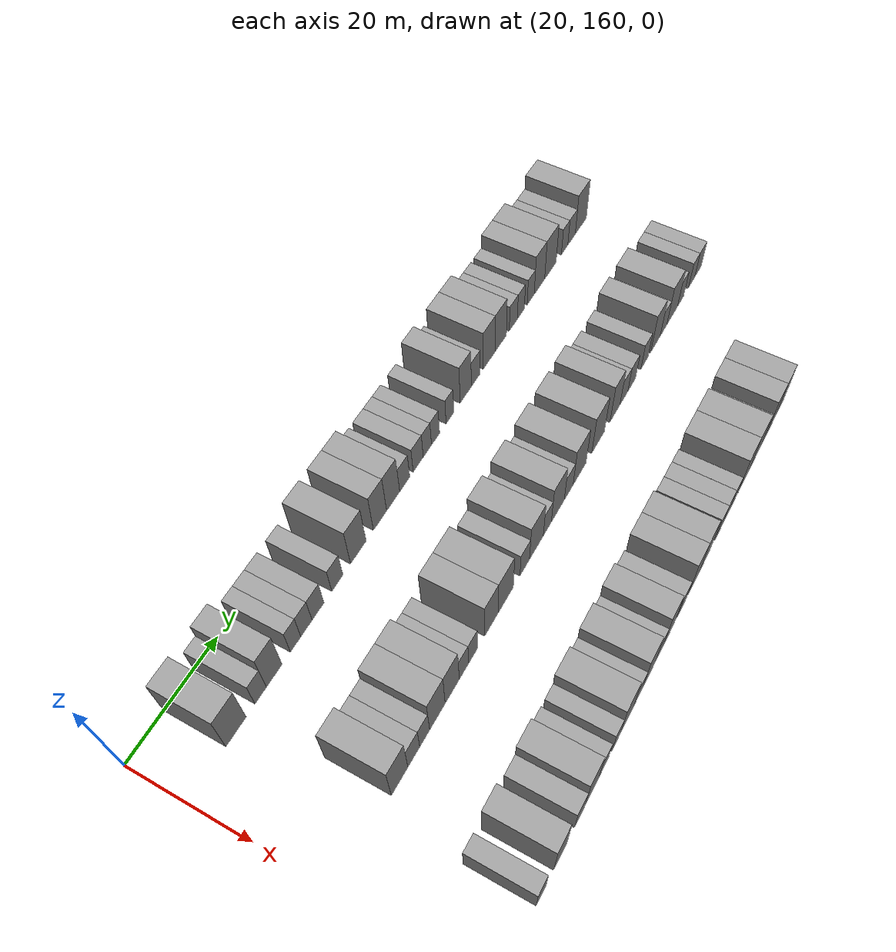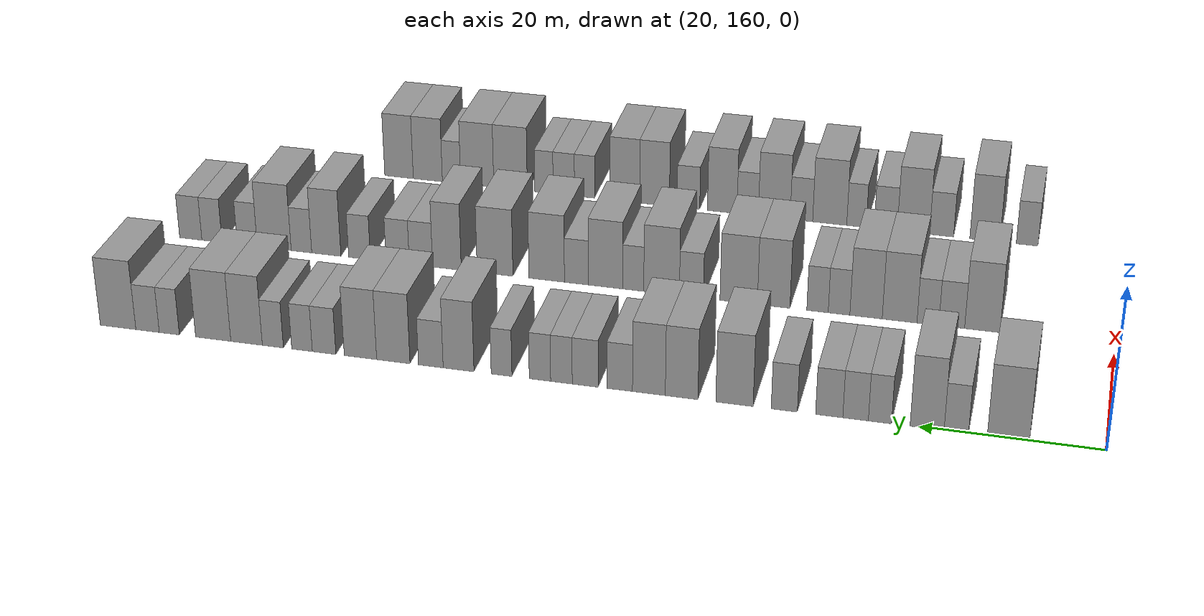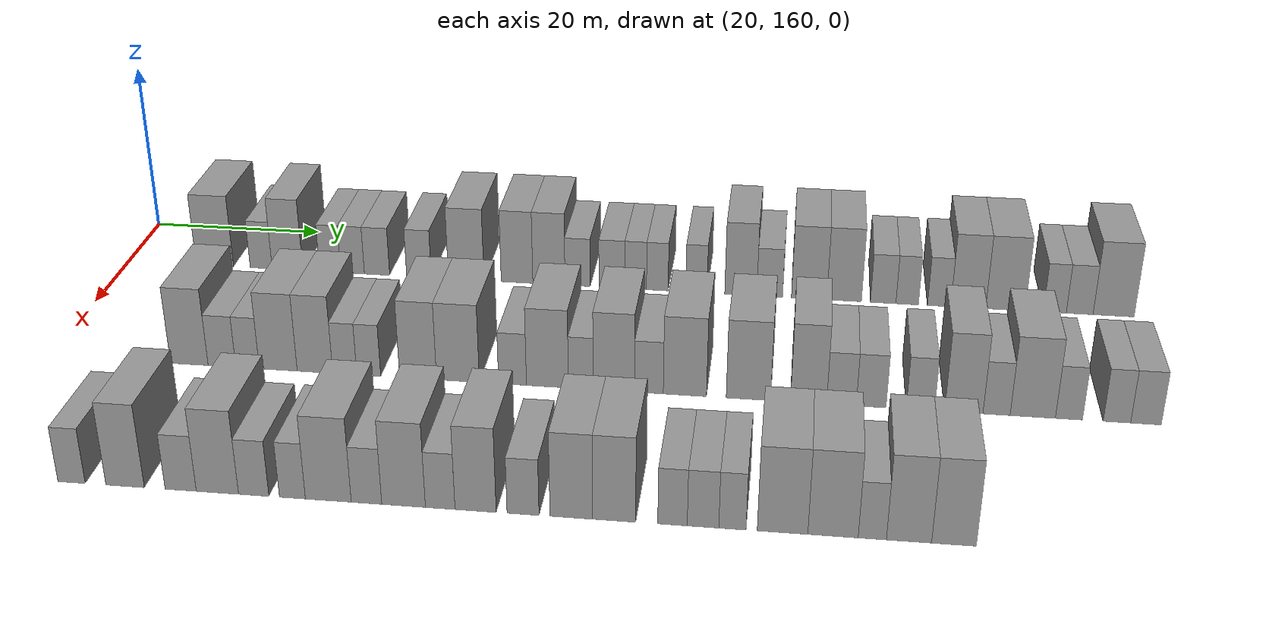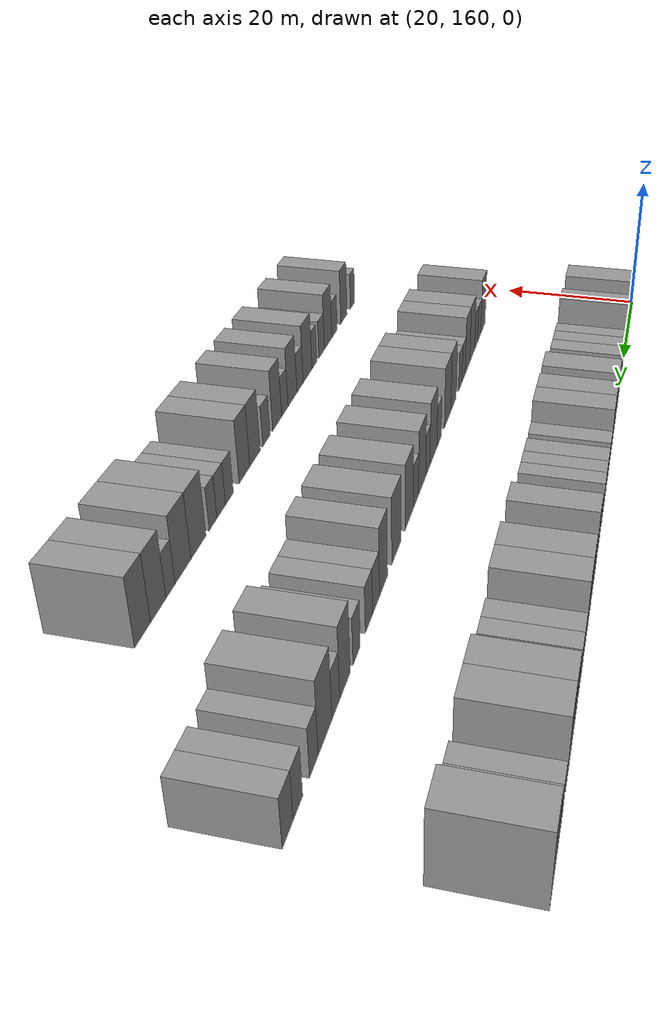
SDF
<sdf version="1.6">
 <world name="default">
  <model name="building_137">
   <static>1</static>
   <pose>25.0000 170.4152 0 0.000000 0.000000 0.000000</pose>
   <link name="link">
    <pose>0 0 4.50 0 0 0</pose>
    <collision name="collision"><geometry><box><size>10.0000 4.4914 9.0000</size></box></geometry></collision>
    <visual name="visual">
     <cast_shadows>0</cast_shadows>
     <geometry><box><size>10.0000 4.4914 9.0000</size></box></geometry>
     <material>
      <script>
       <uri>model://grey_wall/materials/scripts</uri>
       <uri>model://grey_wall/materials/textures</uri>
       <name>vrc/grey_wall</name>
      </script>
     </material>
    </visual>
   </link>
  </model>
  <model name="building_138">
   <static>1</static>
   <pose>25.0000 175.9727 0 0.000000 0.000000 0.000000</pose>
   <link name="link">
    <pose>0 0 3.00 0 0 0</pose>
    <collision name="collision"><geometry><box><size>10.0000 2.6237 6.0000</size></box></geometry></collision>
    <visual name="visual">
     <cast_shadows>0</cast_shadows>
     <geometry><box><size>10.0000 2.6237 6.0000</size></box></geometry>
     <material>
      <script>
       <uri>model://grey_wall/materials/scripts</uri>
       <uri>model://grey_wall/materials/textures</uri>
       <name>vrc/grey_wall</name>
      </script>
     </material>
    </visual>
   </link>
  </model>
  <model name="building_139">
   <static>1</static>
   <pose>25.0000 179.1172 0 0.000000 0.000000 0.000000</pose>
   <link name="link">
    <pose>0 0 4.50 0 0 0</pose>
    <collision name="collision"><geometry><box><size>10.0000 3.6653 9.0000</size></box></geometry></collision>
    <visual name="visual">
     <cast_shadows>0</cast_shadows>
     <geometry><box><size>10.0000 3.6653 9.0000</size></box></geometry>
     <material>
      <script>
       <uri>model://grey_wall/materials/scripts</uri>
       <uri>model://grey_wall/materials/textures</uri>
       <name>vrc/grey_wall</name>
      </script>
     </material>
    </visual>
   </link>
  </model>
  <model name="building_140">
   <static>1</static>
   <pose>25.0000 184.2081 0 0.000000 0.000000 0.000000</pose>
   <link name="link">
    <pose>0 0 3.00 0 0 0</pose>
    <collision name="collision"><geometry><box><size>10.0000 2.5166 6.0000</size></box></geometry></collision>
    <visual name="visual">
     <cast_shadows>0</cast_shadows>
     <geometry><box><size>10.0000 2.5166 6.0000</size></box></geometry>
     <material>
      <script>
       <uri>model://grey_wall/materials/scripts</uri>
       <uri>model://grey_wall/materials/textures</uri>
       <name>vrc/grey_wall</name>
      </script>
     </material>
    </visual>
   </link>
  </model>
  <model name="building_141">
   <static>1</static>
   <pose>25.0000 186.8565 0 0.000000 0.000000 0.000000</pose>
   <link name="link">
    <pose>0 0 3.00 0 0 0</pose>
    <collision name="collision"><geometry><box><size>10.0000 2.7800 6.0000</size></box></geometry></collision>
    <visual name="visual">
     <cast_shadows>0</cast_shadows>
     <geometry><box><size>10.0000 2.7800 6.0000</size></box></geometry>
     <material>
      <script>
       <uri>model://grey_wall/materials/scripts</uri>
       <uri>model://grey_wall/materials/textures</uri>
       <name>vrc/grey_wall</name>
      </script>
     </material>
    </visual>
   </link>
  </model>
  <model name="building_142">
   <static>1</static>
   <pose>25.0000 189.7371 0 0.000000 0.000000 0.000000</pose>
   <link name="link">
    <pose>0 0 3.00 0 0 0</pose>
    <collision name="collision"><geometry><box><size>10.0000 2.9812 6.0000</size></box></geometry></collision>
    <visual name="visual">
     <cast_shadows>0</cast_shadows>
     <geometry><box><size>10.0000 2.9812 6.0000</size></box></geometry>
     <material>
      <script>
       <uri>model://grey_wall/materials/scripts</uri>
       <uri>model://grey_wall/materials/textures</uri>
       <name>vrc/grey_wall</name>
      </script>
     </material>
    </visual>
   </link>
  </model>
  <model name="building_143">
   <static>1</static>
   <pose>25.0000 194.6723 0 0.000000 0.000000 0.000000</pose>
   <link name="link">
    <pose>0 0 3.00 0 0 0</pose>
    <collision name="collision"><geometry><box><size>10.0000 2.8892 6.0000</size></box></geometry></collision>
    <visual name="visual">
     <cast_shadows>0</cast_shadows>
     <geometry><box><size>10.0000 2.8892 6.0000</size></box></geometry>
     <material>
      <script>
       <uri>model://grey_wall/materials/scripts</uri>
       <uri>model://grey_wall/materials/textures</uri>
       <name>vrc/grey_wall</name>
      </script>
     </material>
    </visual>
   </link>
  </model>
  <model name="building_144">
   <static>1</static>
   <pose>25.0000 200.1952 0 0.000000 0.000000 0.000000</pose>
   <link name="link">
    <pose>0 0 4.50 0 0 0</pose>
    <collision name="collision"><geometry><box><size>10.0000 4.1565 9.0000</size></box></geometry></collision>
    <visual name="visual">
     <cast_shadows>0</cast_shadows>
     <geometry><box><size>10.0000 4.1565 9.0000</size></box></geometry>
     <material>
      <script>
       <uri>model://grey_wall/materials/scripts</uri>
       <uri>model://grey_wall/materials/textures</uri>
       <name>vrc/grey_wall</name>
      </script>
     </material>
    </visual>
   </link>
  </model>
  <model name="building_145">
   <static>1</static>
   <pose>25.0000 206.1058 0 0.000000 0.000000 0.000000</pose>
   <link name="link">
    <pose>0 0 4.50 0 0 0</pose>
    <collision name="collision"><geometry><box><size>10.0000 3.6646 9.0000</size></box></geometry></collision>
    <visual name="visual">
     <cast_shadows>0</cast_shadows>
     <geometry><box><size>10.0000 3.6646 9.0000</size></box></geometry>
     <material>
      <script>
       <uri>model://grey_wall/materials/scripts</uri>
       <uri>model://grey_wall/materials/textures</uri>
       <name>vrc/grey_wall</name>
      </script>
     </material>
    </visual>
   </link>
  </model>
  <model name="building_146">
   <static>1</static>
   <pose>25.0000 209.7932 0 0.000000 0.000000 0.000000</pose>
   <link name="link">
    <pose>0 0 4.50 0 0 0</pose>
    <collision name="collision"><geometry><box><size>10.0000 3.7104 9.0000</size></box></geometry></collision>
    <visual name="visual">
     <cast_shadows>0</cast_shadows>
     <geometry><box><size>10.0000 3.7104 9.0000</size></box></geometry>
     <material>
      <script>
       <uri>model://grey_wall/materials/scripts</uri>
       <uri>model://grey_wall/materials/textures</uri>
       <name>vrc/grey_wall</name>
      </script>
     </material>
    </visual>
   </link>
  </model>
  <model name="building_147">
   <static>1</static>
   <pose>25.0000 213.0975 0 0.000000 0.000000 0.000000</pose>
   <link name="link">
    <pose>0 0 3.00 0 0 0</pose>
    <collision name="collision"><geometry><box><size>10.0000 2.8982 6.0000</size></box></geometry></collision>
    <visual name="visual">
     <cast_shadows>0</cast_shadows>
     <geometry><box><size>10.0000 2.8982 6.0000</size></box></geometry>
     <material>
      <script>
       <uri>model://grey_wall/materials/scripts</uri>
       <uri>model://grey_wall/materials/textures</uri>
       <name>vrc/grey_wall</name>
      </script>
     </material>
    </visual>
   </link>
  </model>
  <model name="building_148">
   <static>1</static>
   <pose>25.0000 217.0264 0 0.000000 0.000000 0.000000</pose>
   <link name="link">
    <pose>0 0 3.00 0 0 0</pose>
    <collision name="collision"><geometry><box><size>10.0000 2.9596 6.0000</size></box></geometry></collision>
    <visual name="visual">
     <cast_shadows>0</cast_shadows>
     <geometry><box><size>10.0000 2.9596 6.0000</size></box></geometry>
     <material>
      <script>
       <uri>model://grey_wall/materials/scripts</uri>
       <uri>model://grey_wall/materials/textures</uri>
       <name>vrc/grey_wall</name>
      </script>
     </material>
    </visual>
   </link>
  </model>
  <model name="building_149">
   <static>1</static>
   <pose>25.0000 219.7441 0 0.000000 0.000000 0.000000</pose>
   <link name="link">
    <pose>0 0 3.00 0 0 0</pose>
    <collision name="collision"><geometry><box><size>10.0000 2.4757 6.0000</size></box></geometry></collision>
    <visual name="visual">
     <cast_shadows>0</cast_shadows>
     <geometry><box><size>10.0000 2.4757 6.0000</size></box></geometry>
     <material>
      <script>
       <uri>model://grey_wall/materials/scripts</uri>
       <uri>model://grey_wall/materials/textures</uri>
       <name>vrc/grey_wall</name>
      </script>
     </material>
    </visual>
   </link>
  </model>
  <model name="building_150">
   <static>1</static>
   <pose>25.0000 222.2147 0 0.000000 0.000000 0.000000</pose>
   <link name="link">
    <pose>0 0 3.00 0 0 0</pose>
    <collision name="collision"><geometry><box><size>10.0000 2.4656 6.0000</size></box></geometry></collision>
    <visual name="visual">
     <cast_shadows>0</cast_shadows>
     <geometry><box><size>10.0000 2.4656 6.0000</size></box></geometry>
     <material>
      <script>
       <uri>model://grey_wall/materials/scripts</uri>
       <uri>model://grey_wall/materials/textures</uri>
       <name>vrc/grey_wall</name>
      </script>
     </material>
    </visual>
   </link>
  </model>
  <model name="building_151">
   <static>1</static>
   <pose>25.0000 226.6536 0 0.000000 0.000000 0.000000</pose>
   <link name="link">
    <pose>0 0 3.00 0 0 0</pose>
    <collision name="collision"><geometry><box><size>10.0000 2.4122 6.0000</size></box></geometry></collision>
    <visual name="visual">
     <cast_shadows>0</cast_shadows>
     <geometry><box><size>10.0000 2.4122 6.0000</size></box></geometry>
     <material>
      <script>
       <uri>model://grey_wall/materials/scripts</uri>
       <uri>model://grey_wall/materials/textures</uri>
       <name>vrc/grey_wall</name>
      </script>
     </material>
    </visual>
   </link>
  </model>
  <model name="building_152">
   <static>1</static>
   <pose>25.0000 231.6602 0 0.000000 0.000000 0.000000</pose>
   <link name="link">
    <pose>0 0 4.50 0 0 0</pose>
    <collision name="collision"><geometry><box><size>10.0000 3.6009 9.0000</size></box></geometry></collision>
    <visual name="visual">
     <cast_shadows>0</cast_shadows>
     <geometry><box><size>10.0000 3.6009 9.0000</size></box></geometry>
     <material>
      <script>
       <uri>model://grey_wall/materials/scripts</uri>
       <uri>model://grey_wall/materials/textures</uri>
       <name>vrc/grey_wall</name>
      </script>
     </material>
    </visual>
   </link>
  </model>
  <model name="building_153">
   <static>1</static>
   <pose>25.0000 234.9099 0 0.000000 0.000000 0.000000</pose>
   <link name="link">
    <pose>0 0 3.00 0 0 0</pose>
    <collision name="collision"><geometry><box><size>10.0000 2.8985 6.0000</size></box></geometry></collision>
    <visual name="visual">
     <cast_shadows>0</cast_shadows>
     <geometry><box><size>10.0000 2.8985 6.0000</size></box></geometry>
     <material>
      <script>
       <uri>model://grey_wall/materials/scripts</uri>
       <uri>model://grey_wall/materials/textures</uri>
       <name>vrc/grey_wall</name>
      </script>
     </material>
    </visual>
   </link>
  </model>
  <model name="building_154">
   <static>1</static>
   <pose>25.0000 239.3327 0 0.000000 0.000000 0.000000</pose>
   <link name="link">
    <pose>0 0 4.50 0 0 0</pose>
    <collision name="collision"><geometry><box><size>10.0000 3.9470 9.0000</size></box></geometry></collision>
    <visual name="visual">
     <cast_shadows>0</cast_shadows>
     <geometry><box><size>10.0000 3.9470 9.0000</size></box></geometry>
     <material>
      <script>
       <uri>model://grey_wall/materials/scripts</uri>
       <uri>model://grey_wall/materials/textures</uri>
       <name>vrc/grey_wall</name>
      </script>
     </material>
    </visual>
   </link>
  </model>
  <model name="building_155">
   <static>1</static>
   <pose>25.0000 243.2332 0 0.000000 0.000000 0.000000</pose>
   <link name="link">
    <pose>0 0 4.50 0 0 0</pose>
    <collision name="collision"><geometry><box><size>10.0000 3.8540 9.0000</size></box></geometry></collision>
    <visual name="visual">
     <cast_shadows>0</cast_shadows>
     <geometry><box><size>10.0000 3.8540 9.0000</size></box></geometry>
     <material>
      <script>
       <uri>model://grey_wall/materials/scripts</uri>
       <uri>model://grey_wall/materials/textures</uri>
       <name>vrc/grey_wall</name>
      </script>
     </material>
    </visual>
   </link>
  </model>
  <model name="building_156">
   <static>1</static>
   <pose>25.0000 247.5707 0 0.000000 0.000000 0.000000</pose>
   <link name="link">
    <pose>0 0 3.00 0 0 0</pose>
    <collision name="collision"><geometry><box><size>10.0000 2.8210 6.0000</size></box></geometry></collision>
    <visual name="visual">
     <cast_shadows>0</cast_shadows>
     <geometry><box><size>10.0000 2.8210 6.0000</size></box></geometry>
     <material>
      <script>
       <uri>model://grey_wall/materials/scripts</uri>
       <uri>model://grey_wall/materials/textures</uri>
       <name>vrc/grey_wall</name>
      </script>
     </material>
    </visual>
   </link>
  </model>
  <model name="building_157">
   <static>1</static>
   <pose>25.0000 250.2225 0 0.000000 0.000000 0.000000</pose>
   <link name="link">
    <pose>0 0 3.00 0 0 0</pose>
    <collision name="collision"><geometry><box><size>10.0000 2.4826 6.0000</size></box></geometry></collision>
    <visual name="visual">
     <cast_shadows>0</cast_shadows>
     <geometry><box><size>10.0000 2.4826 6.0000</size></box></geometry>
     <material>
      <script>
       <uri>model://grey_wall/materials/scripts</uri>
       <uri>model://grey_wall/materials/textures</uri>
       <name>vrc/grey_wall</name>
      </script>
     </material>
    </visual>
   </link>
  </model>
  <model name="building_158">
   <static>1</static>
   <pose>25.0000 253.7371 0 0.000000 0.000000 0.000000</pose>
   <link name="link">
    <pose>0 0 3.00 0 0 0</pose>
    <collision name="collision"><geometry><box><size>10.0000 2.5468 6.0000</size></box></geometry></collision>
    <visual name="visual">
     <cast_shadows>0</cast_shadows>
     <geometry><box><size>10.0000 2.5468 6.0000</size></box></geometry>
     <material>
      <script>
       <uri>model://grey_wall/materials/scripts</uri>
       <uri>model://grey_wall/materials/textures</uri>
       <name>vrc/grey_wall</name>
      </script>
     </material>
    </visual>
   </link>
  </model>
  <model name="building_159">
   <static>1</static>
   <pose>25.0000 256.9259 0 0.000000 0.000000 0.000000</pose>
   <link name="link">
    <pose>0 0 4.50 0 0 0</pose>
    <collision name="collision"><geometry><box><size>10.0000 3.8307 9.0000</size></box></geometry></collision>
    <visual name="visual">
     <cast_shadows>0</cast_shadows>
     <geometry><box><size>10.0000 3.8307 9.0000</size></box></geometry>
     <material>
      <script>
       <uri>model://grey_wall/materials/scripts</uri>
       <uri>model://grey_wall/materials/textures</uri>
       <name>vrc/grey_wall</name>
      </script>
     </material>
    </visual>
   </link>
  </model>
  <model name="building_160">
   <static>1</static>
   <pose>25.0000 260.9900 0 0.000000 0.000000 0.000000</pose>
   <link name="link">
    <pose>0 0 4.50 0 0 0</pose>
    <collision name="collision"><geometry><box><size>10.0000 4.2975 9.0000</size></box></geometry></collision>
    <visual name="visual">
     <cast_shadows>0</cast_shadows>
     <geometry><box><size>10.0000 4.2975 9.0000</size></box></geometry>
     <material>
      <script>
       <uri>model://grey_wall/materials/scripts</uri>
       <uri>model://grey_wall/materials/textures</uri>
       <name>vrc/grey_wall</name>
      </script>
     </material>
    </visual>
   </link>
  </model>
  <model name="building_161">
   <static>1</static>
   <pose>25.0000 266.3770 0 0.000000 0.000000 0.000000</pose>
   <link name="link">
    <pose>0 0 3.00 0 0 0</pose>
    <collision name="collision"><geometry><box><size>10.0000 2.4764 6.0000</size></box></geometry></collision>
    <visual name="visual">
     <cast_shadows>0</cast_shadows>
     <geometry><box><size>10.0000 2.4764 6.0000</size></box></geometry>
     <material>
      <script>
       <uri>model://grey_wall/materials/scripts</uri>
       <uri>model://grey_wall/materials/textures</uri>
       <name>vrc/grey_wall</name>
      </script>
     </material>
    </visual>
   </link>
  </model>
  <model name="building_162">
   <static>1</static>
   <pose>25.0000 269.0627 0 0.000000 0.000000 0.000000</pose>
   <link name="link">
    <pose>0 0 3.00 0 0 0</pose>
    <collision name="collision"><geometry><box><size>10.0000 2.8949 6.0000</size></box></geometry></collision>
    <visual name="visual">
     <cast_shadows>0</cast_shadows>
     <geometry><box><size>10.0000 2.8949 6.0000</size></box></geometry>
     <material>
      <script>
       <uri>model://grey_wall/materials/scripts</uri>
       <uri>model://grey_wall/materials/textures</uri>
       <name>vrc/grey_wall</name>
      </script>
     </material>
    </visual>
   </link>
  </model>
  <model name="building_163">
   <static>1</static>
   <pose>25.0000 272.7180 0 0.000000 0.000000 0.000000</pose>
   <link name="link">
    <pose>0 0 4.50 0 0 0</pose>
    <collision name="collision"><geometry><box><size>10.0000 4.4158 9.0000</size></box></geometry></collision>
    <visual name="visual">
     <cast_shadows>0</cast_shadows>
     <geometry><box><size>10.0000 4.4158 9.0000</size></box></geometry>
     <material>
      <script>
       <uri>model://grey_wall/materials/scripts</uri>
       <uri>model://grey_wall/materials/textures</uri>
       <name>vrc/grey_wall</name>
      </script>
     </material>
    </visual>
   </link>
  </model>
  <model name="building_336">
   <static>1</static>
   <pose>47.0000 175.1035 0 0.000000 0.000000 0.000000</pose>
   <link name="link">
    <pose>0 0 4.50 0 0 0</pose>
    <collision name="collision"><geometry><box><size>10.0000 4.0680 9.0000</size></box></geometry></collision>
    <visual name="visual">
     <cast_shadows>0</cast_shadows>
     <geometry><box><size>10.0000 4.0680 9.0000</size></box></geometry>
     <material>
      <script>
       <uri>model://grey_wall/materials/scripts</uri>
       <uri>model://grey_wall/materials/textures</uri>
       <name>vrc/grey_wall</name>
      </script>
     </material>
    </visual>
   </link>
  </model>
  <model name="building_337">
   <static>1</static>
   <pose>47.0000 178.6288 0 0.000000 0.000000 0.000000</pose>
   <link name="link">
    <pose>0 0 3.00 0 0 0</pose>
    <collision name="collision"><geometry><box><size>10.0000 2.9825 6.0000</size></box></geometry></collision>
    <visual name="visual">
     <cast_shadows>0</cast_shadows>
     <geometry><box><size>10.0000 2.9825 6.0000</size></box></geometry>
     <material>
      <script>
       <uri>model://grey_wall/materials/scripts</uri>
       <uri>model://grey_wall/materials/textures</uri>
       <name>vrc/grey_wall</name>
      </script>
     </material>
    </visual>
   </link>
  </model>
  <model name="building_338">
   <static>1</static>
   <pose>47.0000 181.3850 0 0.000000 0.000000 0.000000</pose>
   <link name="link">
    <pose>0 0 3.00 0 0 0</pose>
    <collision name="collision"><geometry><box><size>10.0000 2.5298 6.0000</size></box></geometry></collision>
    <visual name="visual">
     <cast_shadows>0</cast_shadows>
     <geometry><box><size>10.0000 2.5298 6.0000</size></box></geometry>
     <material>
      <script>
       <uri>model://grey_wall/materials/scripts</uri>
       <uri>model://grey_wall/materials/textures</uri>
       <name>vrc/grey_wall</name>
      </script>
     </material>
    </visual>
   </link>
  </model>
  <model name="building_339">
   <static>1</static>
   <pose>47.0000 184.6769 0 0.000000 0.000000 0.000000</pose>
   <link name="link">
    <pose>0 0 4.50 0 0 0</pose>
    <collision name="collision"><geometry><box><size>10.0000 4.0539 9.0000</size></box></geometry></collision>
    <visual name="visual">
     <cast_shadows>0</cast_shadows>
     <geometry><box><size>10.0000 4.0539 9.0000</size></box></geometry>
     <material>
      <script>
       <uri>model://grey_wall/materials/scripts</uri>
       <uri>model://grey_wall/materials/textures</uri>
       <name>vrc/grey_wall</name>
      </script>
     </material>
    </visual>
   </link>
  </model>
  <model name="building_340">
   <static>1</static>
   <pose>47.0000 188.5991 0 0.000000 0.000000 0.000000</pose>
   <link name="link">
    <pose>0 0 4.50 0 0 0</pose>
    <collision name="collision"><geometry><box><size>10.0000 3.7904 9.0000</size></box></geometry></collision>
    <visual name="visual">
     <cast_shadows>0</cast_shadows>
     <geometry><box><size>10.0000 3.7904 9.0000</size></box></geometry>
     <material>
      <script>
       <uri>model://grey_wall/materials/scripts</uri>
       <uri>model://grey_wall/materials/textures</uri>
       <name>vrc/grey_wall</name>
      </script>
     </material>
    </visual>
   </link>
  </model>
  <model name="building_341">
   <static>1</static>
   <pose>47.0000 191.7687 0 0.000000 0.000000 0.000000</pose>
   <link name="link">
    <pose>0 0 3.00 0 0 0</pose>
    <collision name="collision"><geometry><box><size>10.0000 2.5490 6.0000</size></box></geometry></collision>
    <visual name="visual">
     <cast_shadows>0</cast_shadows>
     <geometry><box><size>10.0000 2.5490 6.0000</size></box></geometry>
     <material>
      <script>
       <uri>model://grey_wall/materials/scripts</uri>
       <uri>model://grey_wall/materials/textures</uri>
       <name>vrc/grey_wall</name>
      </script>
     </material>
    </visual>
   </link>
  </model>
  <model name="building_342">
   <static>1</static>
   <pose>47.0000 194.3088 0 0.000000 0.000000 0.000000</pose>
   <link name="link">
    <pose>0 0 3.00 0 0 0</pose>
    <collision name="collision"><geometry><box><size>10.0000 2.5311 6.0000</size></box></geometry></collision>
    <visual name="visual">
     <cast_shadows>0</cast_shadows>
     <geometry><box><size>10.0000 2.5311 6.0000</size></box></geometry>
     <material>
      <script>
       <uri>model://grey_wall/materials/scripts</uri>
       <uri>model://grey_wall/materials/textures</uri>
       <name>vrc/grey_wall</name>
      </script>
     </material>
    </visual>
   </link>
  </model>
  <model name="building_343">
   <static>1</static>
   <pose>47.0000 199.5138 0 0.000000 0.000000 0.000000</pose>
   <link name="link">
    <pose>0 0 4.50 0 0 0</pose>
    <collision name="collision"><geometry><box><size>10.0000 3.8790 9.0000</size></box></geometry></collision>
    <visual name="visual">
     <cast_shadows>0</cast_shadows>
     <geometry><box><size>10.0000 3.8790 9.0000</size></box></geometry>
     <material>
      <script>
       <uri>model://grey_wall/materials/scripts</uri>
       <uri>model://grey_wall/materials/textures</uri>
       <name>vrc/grey_wall</name>
      </script>
     </material>
    </visual>
   </link>
  </model>
  <model name="building_344">
   <static>1</static>
   <pose>47.0000 203.6959 0 0.000000 0.000000 0.000000</pose>
   <link name="link">
    <pose>0 0 4.50 0 0 0</pose>
    <collision name="collision"><geometry><box><size>10.0000 4.4853 9.0000</size></box></geometry></collision>
    <visual name="visual">
     <cast_shadows>0</cast_shadows>
     <geometry><box><size>10.0000 4.4853 9.0000</size></box></geometry>
     <material>
      <script>
       <uri>model://grey_wall/materials/scripts</uri>
       <uri>model://grey_wall/materials/textures</uri>
       <name>vrc/grey_wall</name>
      </script>
     </material>
    </visual>
   </link>
  </model>
  <model name="building_345">
   <static>1</static>
   <pose>47.0000 209.3863 0 0.000000 0.000000 0.000000</pose>
   <link name="link">
    <pose>0 0 3.00 0 0 0</pose>
    <collision name="collision"><geometry><box><size>10.0000 2.8956 6.0000</size></box></geometry></collision>
    <visual name="visual">
     <cast_shadows>0</cast_shadows>
     <geometry><box><size>10.0000 2.8956 6.0000</size></box></geometry>
     <material>
      <script>
       <uri>model://grey_wall/materials/scripts</uri>
       <uri>model://grey_wall/materials/textures</uri>
       <name>vrc/grey_wall</name>
      </script>
     </material>
    </visual>
   </link>
  </model>
  <model name="building_346">
   <static>1</static>
   <pose>47.0000 213.0008 0 0.000000 0.000000 0.000000</pose>
   <link name="link">
    <pose>0 0 4.50 0 0 0</pose>
    <collision name="collision"><geometry><box><size>10.0000 4.3333 9.0000</size></box></geometry></collision>
    <visual name="visual">
     <cast_shadows>0</cast_shadows>
     <geometry><box><size>10.0000 4.3333 9.0000</size></box></geometry>
     <material>
      <script>
       <uri>model://grey_wall/materials/scripts</uri>
       <uri>model://grey_wall/materials/textures</uri>
       <name>vrc/grey_wall</name>
      </script>
     </material>
    </visual>
   </link>
  </model>
  <model name="building_347">
   <static>1</static>
   <pose>47.0000 216.4450 0 0.000000 0.000000 0.000000</pose>
   <link name="link">
    <pose>0 0 3.00 0 0 0</pose>
    <collision name="collision"><geometry><box><size>10.0000 2.5553 6.0000</size></box></geometry></collision>
    <visual name="visual">
     <cast_shadows>0</cast_shadows>
     <geometry><box><size>10.0000 2.5553 6.0000</size></box></geometry>
     <material>
      <script>
       <uri>model://grey_wall/materials/scripts</uri>
       <uri>model://grey_wall/materials/textures</uri>
       <name>vrc/grey_wall</name>
      </script>
     </material>
    </visual>
   </link>
  </model>
  <model name="building_348">
   <static>1</static>
   <pose>47.0000 219.8386 0 0.000000 0.000000 0.000000</pose>
   <link name="link">
    <pose>0 0 4.50 0 0 0</pose>
    <collision name="collision"><geometry><box><size>10.0000 4.2319 9.0000</size></box></geometry></collision>
    <visual name="visual">
     <cast_shadows>0</cast_shadows>
     <geometry><box><size>10.0000 4.2319 9.0000</size></box></geometry>
     <material>
      <script>
       <uri>model://grey_wall/materials/scripts</uri>
       <uri>model://grey_wall/materials/textures</uri>
       <name>vrc/grey_wall</name>
      </script>
     </material>
    </visual>
   </link>
  </model>
  <model name="building_349">
   <static>1</static>
   <pose>47.0000 223.4255 0 0.000000 0.000000 0.000000</pose>
   <link name="link">
    <pose>0 0 3.00 0 0 0</pose>
    <collision name="collision"><geometry><box><size>10.0000 2.9419 6.0000</size></box></geometry></collision>
    <visual name="visual">
     <cast_shadows>0</cast_shadows>
     <geometry><box><size>10.0000 2.9419 6.0000</size></box></geometry>
     <material>
      <script>
       <uri>model://grey_wall/materials/scripts</uri>
       <uri>model://grey_wall/materials/textures</uri>
       <name>vrc/grey_wall</name>
      </script>
     </material>
    </visual>
   </link>
  </model>
  <model name="building_350">
   <static>1</static>
   <pose>47.0000 227.0939 0 0.000000 0.000000 0.000000</pose>
   <link name="link">
    <pose>0 0 4.50 0 0 0</pose>
    <collision name="collision"><geometry><box><size>10.0000 4.3949 9.0000</size></box></geometry></collision>
    <visual name="visual">
     <cast_shadows>0</cast_shadows>
     <geometry><box><size>10.0000 4.3949 9.0000</size></box></geometry>
     <material>
      <script>
       <uri>model://grey_wall/materials/scripts</uri>
       <uri>model://grey_wall/materials/textures</uri>
       <name>vrc/grey_wall</name>
      </script>
     </material>
    </visual>
   </link>
  </model>
  <model name="building_351">
   <static>1</static>
   <pose>47.0000 233.5297 0 0.000000 0.000000 0.000000</pose>
   <link name="link">
    <pose>0 0 4.50 0 0 0</pose>
    <collision name="collision"><geometry><box><size>10.0000 4.4767 9.0000</size></box></geometry></collision>
    <visual name="visual">
     <cast_shadows>0</cast_shadows>
     <geometry><box><size>10.0000 4.4767 9.0000</size></box></geometry>
     <material>
      <script>
       <uri>model://grey_wall/materials/scripts</uri>
       <uri>model://grey_wall/materials/textures</uri>
       <name>vrc/grey_wall</name>
      </script>
     </material>
    </visual>
   </link>
  </model>
  <model name="building_352">
   <static>1</static>
   <pose>47.0000 239.5774 0 0.000000 0.000000 0.000000</pose>
   <link name="link">
    <pose>0 0 4.50 0 0 0</pose>
    <collision name="collision"><geometry><box><size>10.0000 3.6187 9.0000</size></box></geometry></collision>
    <visual name="visual">
     <cast_shadows>0</cast_shadows>
     <geometry><box><size>10.0000 3.6187 9.0000</size></box></geometry>
     <material>
      <script>
       <uri>model://grey_wall/materials/scripts</uri>
       <uri>model://grey_wall/materials/textures</uri>
       <name>vrc/grey_wall</name>
      </script>
     </material>
    </visual>
   </link>
  </model>
  <model name="building_353">
   <static>1</static>
   <pose>47.0000 242.8636 0 0.000000 0.000000 0.000000</pose>
   <link name="link">
    <pose>0 0 3.00 0 0 0</pose>
    <collision name="collision"><geometry><box><size>10.0000 2.9537 6.0000</size></box></geometry></collision>
    <visual name="visual">
     <cast_shadows>0</cast_shadows>
     <geometry><box><size>10.0000 2.9537 6.0000</size></box></geometry>
     <material>
      <script>
       <uri>model://grey_wall/materials/scripts</uri>
       <uri>model://grey_wall/materials/textures</uri>
       <name>vrc/grey_wall</name>
      </script>
     </material>
    </visual>
   </link>
  </model>
  <model name="building_354">
   <static>1</static>
   <pose>47.0000 245.8181 0 0.000000 0.000000 0.000000</pose>
   <link name="link">
    <pose>0 0 3.00 0 0 0</pose>
    <collision name="collision"><geometry><box><size>10.0000 2.9555 6.0000</size></box></geometry></collision>
    <visual name="visual">
     <cast_shadows>0</cast_shadows>
     <geometry><box><size>10.0000 2.9555 6.0000</size></box></geometry>
     <material>
      <script>
       <uri>model://grey_wall/materials/scripts</uri>
       <uri>model://grey_wall/materials/textures</uri>
       <name>vrc/grey_wall</name>
      </script>
     </material>
    </visual>
   </link>
  </model>
  <model name="building_355">
   <static>1</static>
   <pose>47.0000 250.6906 0 0.000000 0.000000 0.000000</pose>
   <link name="link">
    <pose>0 0 3.00 0 0 0</pose>
    <collision name="collision"><geometry><box><size>10.0000 2.7893 6.0000</size></box></geometry></collision>
    <visual name="visual">
     <cast_shadows>0</cast_shadows>
     <geometry><box><size>10.0000 2.7893 6.0000</size></box></geometry>
     <material>
      <script>
       <uri>model://grey_wall/materials/scripts</uri>
       <uri>model://grey_wall/materials/textures</uri>
       <name>vrc/grey_wall</name>
      </script>
     </material>
    </visual>
   </link>
  </model>
  <model name="building_356">
   <static>1</static>
   <pose>47.0000 254.9683 0 0.000000 0.000000 0.000000</pose>
   <link name="link">
    <pose>0 0 4.50 0 0 0</pose>
    <collision name="collision"><geometry><box><size>10.0000 3.7663 9.0000</size></box></geometry></collision>
    <visual name="visual">
     <cast_shadows>0</cast_shadows>
     <geometry><box><size>10.0000 3.7663 9.0000</size></box></geometry>
     <material>
      <script>
       <uri>model://grey_wall/materials/scripts</uri>
       <uri>model://grey_wall/materials/textures</uri>
       <name>vrc/grey_wall</name>
      </script>
     </material>
    </visual>
   </link>
  </model>
  <model name="building_357">
   <static>1</static>
   <pose>47.0000 258.1825 0 0.000000 0.000000 0.000000</pose>
   <link name="link">
    <pose>0 0 3.00 0 0 0</pose>
    <collision name="collision"><geometry><box><size>10.0000 2.6620 6.0000</size></box></geometry></collision>
    <visual name="visual">
     <cast_shadows>0</cast_shadows>
     <geometry><box><size>10.0000 2.6620 6.0000</size></box></geometry>
     <material>
      <script>
       <uri>model://grey_wall/materials/scripts</uri>
       <uri>model://grey_wall/materials/textures</uri>
       <name>vrc/grey_wall</name>
      </script>
     </material>
    </visual>
   </link>
  </model>
  <model name="building_358">
   <static>1</static>
   <pose>47.0000 261.7209 0 0.000000 0.000000 0.000000</pose>
   <link name="link">
    <pose>0 0 4.50 0 0 0</pose>
    <collision name="collision"><geometry><box><size>10.0000 4.4149 9.0000</size></box></geometry></collision>
    <visual name="visual">
     <cast_shadows>0</cast_shadows>
     <geometry><box><size>10.0000 4.4149 9.0000</size></box></geometry>
     <material>
      <script>
       <uri>model://grey_wall/materials/scripts</uri>
       <uri>model://grey_wall/materials/textures</uri>
       <name>vrc/grey_wall</name>
      </script>
     </material>
    </visual>
   </link>
  </model>
  <model name="building_359">
   <static>1</static>
   <pose>47.0000 265.2406 0 0.000000 0.000000 0.000000</pose>
   <link name="link">
    <pose>0 0 3.00 0 0 0</pose>
    <collision name="collision"><geometry><box><size>10.0000 2.6245 6.0000</size></box></geometry></collision>
    <visual name="visual">
     <cast_shadows>0</cast_shadows>
     <geometry><box><size>10.0000 2.6245 6.0000</size></box></geometry>
     <material>
      <script>
       <uri>model://grey_wall/materials/scripts</uri>
       <uri>model://grey_wall/materials/textures</uri>
       <name>vrc/grey_wall</name>
      </script>
     </material>
    </visual>
   </link>
  </model>
  <model name="building_360">
   <static>1</static>
   <pose>47.0000 269.8817 0 0.000000 0.000000 0.000000</pose>
   <link name="link">
    <pose>0 0 3.00 0 0 0</pose>
    <collision name="collision"><geometry><box><size>10.0000 2.6579 6.0000</size></box></geometry></collision>
    <visual name="visual">
     <cast_shadows>0</cast_shadows>
     <geometry><box><size>10.0000 2.6579 6.0000</size></box></geometry>
     <material>
      <script>
       <uri>model://grey_wall/materials/scripts</uri>
       <uri>model://grey_wall/materials/textures</uri>
       <name>vrc/grey_wall</name>
      </script>
     </material>
    </visual>
   </link>
  </model>
  <model name="building_361">
   <static>1</static>
   <pose>47.0000 272.6764 0 0.000000 0.000000 0.000000</pose>
   <link name="link">
    <pose>0 0 3.00 0 0 0</pose>
    <collision name="collision"><geometry><box><size>10.0000 2.9316 6.0000</size></box></geometry></collision>
    <visual name="visual">
     <cast_shadows>0</cast_shadows>
     <geometry><box><size>10.0000 2.9316 6.0000</size></box></geometry>
     <material>
      <script>
       <uri>model://grey_wall/materials/scripts</uri>
       <uri>model://grey_wall/materials/textures</uri>
       <name>vrc/grey_wall</name>
      </script>
     </material>
    </visual>
   </link>
  </model>
  <model name="building_511">
   <static>1</static>
   <pose>69.0000 171.5109 0 0.000000 0.000000 0.000000</pose>
   <link name="link">
    <pose>0 0 3.00 0 0 0</pose>
    <collision name="collision"><geometry><box><size>10.0000 2.6534 6.0000</size></box></geometry></collision>
    <visual name="visual">
     <cast_shadows>0</cast_shadows>
     <geometry><box><size>10.0000 2.6534 6.0000</size></box></geometry>
     <material>
      <script>
       <uri>model://grey_wall/materials/scripts</uri>
       <uri>model://grey_wall/materials/textures</uri>
       <name>vrc/grey_wall</name>
      </script>
     </material>
    </visual>
   </link>
  </model>
  <model name="building_512">
   <static>1</static>
   <pose>69.0000 176.6934 0 0.000000 0.000000 0.000000</pose>
   <link name="link">
    <pose>0 0 4.50 0 0 0</pose>
    <collision name="collision"><geometry><box><size>10.0000 3.7117 9.0000</size></box></geometry></collision>
    <visual name="visual">
     <cast_shadows>0</cast_shadows>
     <geometry><box><size>10.0000 3.7117 9.0000</size></box></geometry>
     <material>
      <script>
       <uri>model://grey_wall/materials/scripts</uri>
       <uri>model://grey_wall/materials/textures</uri>
       <name>vrc/grey_wall</name>
      </script>
     </material>
    </visual>
   </link>
  </model>
  <model name="building_513">
   <static>1</static>
   <pose>69.0000 182.0443 0 0.000000 0.000000 0.000000</pose>
   <link name="link">
    <pose>0 0 3.00 0 0 0</pose>
    <collision name="collision"><geometry><box><size>10.0000 2.9900 6.0000</size></box></geometry></collision>
    <visual name="visual">
     <cast_shadows>0</cast_shadows>
     <geometry><box><size>10.0000 2.9900 6.0000</size></box></geometry>
     <material>
      <script>
       <uri>model://grey_wall/materials/scripts</uri>
       <uri>model://grey_wall/materials/textures</uri>
       <name>vrc/grey_wall</name>
      </script>
     </material>
    </visual>
   </link>
  </model>
  <model name="building_514">
   <static>1</static>
   <pose>69.0000 185.5531 0 0.000000 0.000000 0.000000</pose>
   <link name="link">
    <pose>0 0 4.50 0 0 0</pose>
    <collision name="collision"><geometry><box><size>10.0000 4.0275 9.0000</size></box></geometry></collision>
    <visual name="visual">
     <cast_shadows>0</cast_shadows>
     <geometry><box><size>10.0000 4.0275 9.0000</size></box></geometry>
     <material>
      <script>
       <uri>model://grey_wall/materials/scripts</uri>
       <uri>model://grey_wall/materials/textures</uri>
       <name>vrc/grey_wall</name>
      </script>
     </material>
    </visual>
   </link>
  </model>
  <model name="building_515">
   <static>1</static>
   <pose>69.0000 189.0104 0 0.000000 0.000000 0.000000</pose>
   <link name="link">
    <pose>0 0 3.00 0 0 0</pose>
    <collision name="collision"><geometry><box><size>10.0000 2.8871 6.0000</size></box></geometry></collision>
    <visual name="visual">
     <cast_shadows>0</cast_shadows>
     <geometry><box><size>10.0000 2.8871 6.0000</size></box></geometry>
     <material>
      <script>
       <uri>model://grey_wall/materials/scripts</uri>
       <uri>model://grey_wall/materials/textures</uri>
       <name>vrc/grey_wall</name>
      </script>
     </material>
    </visual>
   </link>
  </model>
  <model name="building_516">
   <static>1</static>
   <pose>69.0000 192.6783 0 0.000000 0.000000 0.000000</pose>
   <link name="link">
    <pose>0 0 3.00 0 0 0</pose>
    <collision name="collision"><geometry><box><size>10.0000 2.4486 6.0000</size></box></geometry></collision>
    <visual name="visual">
     <cast_shadows>0</cast_shadows>
     <geometry><box><size>10.0000 2.4486 6.0000</size></box></geometry>
     <material>
      <script>
       <uri>model://grey_wall/materials/scripts</uri>
       <uri>model://grey_wall/materials/textures</uri>
       <name>vrc/grey_wall</name>
      </script>
     </material>
    </visual>
   </link>
  </model>
  <model name="building_517">
   <static>1</static>
   <pose>69.0000 196.0590 0 0.000000 0.000000 0.000000</pose>
   <link name="link">
    <pose>0 0 4.50 0 0 0</pose>
    <collision name="collision"><geometry><box><size>10.0000 4.3128 9.0000</size></box></geometry></collision>
    <visual name="visual">
     <cast_shadows>0</cast_shadows>
     <geometry><box><size>10.0000 4.3128 9.0000</size></box></geometry>
     <material>
      <script>
       <uri>model://grey_wall/materials/scripts</uri>
       <uri>model://grey_wall/materials/textures</uri>
       <name>vrc/grey_wall</name>
      </script>
     </material>
    </visual>
   </link>
  </model>
  <model name="building_518">
   <static>1</static>
   <pose>69.0000 199.6429 0 0.000000 0.000000 0.000000</pose>
   <link name="link">
    <pose>0 0 3.00 0 0 0</pose>
    <collision name="collision"><geometry><box><size>10.0000 2.8551 6.0000</size></box></geometry></collision>
    <visual name="visual">
     <cast_shadows>0</cast_shadows>
     <geometry><box><size>10.0000 2.8551 6.0000</size></box></geometry>
     <material>
      <script>
       <uri>model://grey_wall/materials/scripts</uri>
       <uri>model://grey_wall/materials/textures</uri>
       <name>vrc/grey_wall</name>
      </script>
     </material>
    </visual>
   </link>
  </model>
  <model name="building_519">
   <static>1</static>
   <pose>69.0000 203.1033 0 0.000000 0.000000 0.000000</pose>
   <link name="link">
    <pose>0 0 4.50 0 0 0</pose>
    <collision name="collision"><geometry><box><size>10.0000 4.0655 9.0000</size></box></geometry></collision>
    <visual name="visual">
     <cast_shadows>0</cast_shadows>
     <geometry><box><size>10.0000 4.0655 9.0000</size></box></geometry>
     <material>
      <script>
       <uri>model://grey_wall/materials/scripts</uri>
       <uri>model://grey_wall/materials/textures</uri>
       <name>vrc/grey_wall</name>
      </script>
     </material>
    </visual>
   </link>
  </model>
  <model name="building_520">
   <static>1</static>
   <pose>69.0000 206.5088 0 0.000000 0.000000 0.000000</pose>
   <link name="link">
    <pose>0 0 3.00 0 0 0</pose>
    <collision name="collision"><geometry><box><size>10.0000 2.7456 6.0000</size></box></geometry></collision>
    <visual name="visual">
     <cast_shadows>0</cast_shadows>
     <geometry><box><size>10.0000 2.7456 6.0000</size></box></geometry>
     <material>
      <script>
       <uri>model://grey_wall/materials/scripts</uri>
       <uri>model://grey_wall/materials/textures</uri>
       <name>vrc/grey_wall</name>
      </script>
     </material>
    </visual>
   </link>
  </model>
  <model name="building_521">
   <static>1</static>
   <pose>69.0000 209.7824 0 0.000000 0.000000 0.000000</pose>
   <link name="link">
    <pose>0 0 4.50 0 0 0</pose>
    <collision name="collision"><geometry><box><size>10.0000 3.8015 9.0000</size></box></geometry></collision>
    <visual name="visual">
     <cast_shadows>0</cast_shadows>
     <geometry><box><size>10.0000 3.8015 9.0000</size></box></geometry>
     <material>
      <script>
       <uri>model://grey_wall/materials/scripts</uri>
       <uri>model://grey_wall/materials/textures</uri>
       <name>vrc/grey_wall</name>
      </script>
     </material>
    </visual>
   </link>
  </model>
  <model name="building_522">
   <static>1</static>
   <pose>69.0000 214.1511 0 0.000000 0.000000 0.000000</pose>
   <link name="link">
    <pose>0 0 3.00 0 0 0</pose>
    <collision name="collision"><geometry><box><size>10.0000 2.9359 6.0000</size></box></geometry></collision>
    <visual name="visual">
     <cast_shadows>0</cast_shadows>
     <geometry><box><size>10.0000 2.9359 6.0000</size></box></geometry>
     <material>
      <script>
       <uri>model://grey_wall/materials/scripts</uri>
       <uri>model://grey_wall/materials/textures</uri>
       <name>vrc/grey_wall</name>
      </script>
     </material>
    </visual>
   </link>
  </model>
  <model name="building_523">
   <static>1</static>
   <pose>69.0000 218.5629 0 0.000000 0.000000 0.000000</pose>
   <link name="link">
    <pose>0 0 4.50 0 0 0</pose>
    <collision name="collision"><geometry><box><size>10.0000 3.8876 9.0000</size></box></geometry></collision>
    <visual name="visual">
     <cast_shadows>0</cast_shadows>
     <geometry><box><size>10.0000 3.8876 9.0000</size></box></geometry>
     <material>
      <script>
       <uri>model://grey_wall/materials/scripts</uri>
       <uri>model://grey_wall/materials/textures</uri>
       <name>vrc/grey_wall</name>
      </script>
     </material>
    </visual>
   </link>
  </model>
  <model name="building_524">
   <static>1</static>
   <pose>69.0000 222.4576 0 0.000000 0.000000 0.000000</pose>
   <link name="link">
    <pose>0 0 4.50 0 0 0</pose>
    <collision name="collision"><geometry><box><size>10.0000 3.9018 9.0000</size></box></geometry></collision>
    <visual name="visual">
     <cast_shadows>0</cast_shadows>
     <geometry><box><size>10.0000 3.9018 9.0000</size></box></geometry>
     <material>
      <script>
       <uri>model://grey_wall/materials/scripts</uri>
       <uri>model://grey_wall/materials/textures</uri>
       <name>vrc/grey_wall</name>
      </script>
     </material>
    </visual>
   </link>
  </model>
  <model name="building_525">
   <static>1</static>
   <pose>69.0000 227.7346 0 0.000000 0.000000 0.000000</pose>
   <link name="link">
    <pose>0 0 3.00 0 0 0</pose>
    <collision name="collision"><geometry><box><size>10.0000 2.6521 6.0000</size></box></geometry></collision>
    <visual name="visual">
     <cast_shadows>0</cast_shadows>
     <geometry><box><size>10.0000 2.6521 6.0000</size></box></geometry>
     <material>
      <script>
       <uri>model://grey_wall/materials/scripts</uri>
       <uri>model://grey_wall/materials/textures</uri>
       <name>vrc/grey_wall</name>
      </script>
     </material>
    </visual>
   </link>
  </model>
  <model name="building_526">
   <static>1</static>
   <pose>69.0000 230.4760 0 0.000000 0.000000 0.000000</pose>
   <link name="link">
    <pose>0 0 3.00 0 0 0</pose>
    <collision name="collision"><geometry><box><size>10.0000 2.8308 6.0000</size></box></geometry></collision>
    <visual name="visual">
     <cast_shadows>0</cast_shadows>
     <geometry><box><size>10.0000 2.8308 6.0000</size></box></geometry>
     <material>
      <script>
       <uri>model://grey_wall/materials/scripts</uri>
       <uri>model://grey_wall/materials/textures</uri>
       <name>vrc/grey_wall</name>
      </script>
     </material>
    </visual>
   </link>
  </model>
  <model name="building_527">
   <static>1</static>
   <pose>69.0000 233.1092 0 0.000000 0.000000 0.000000</pose>
   <link name="link">
    <pose>0 0 3.00 0 0 0</pose>
    <collision name="collision"><geometry><box><size>10.0000 2.4355 6.0000</size></box></geometry></collision>
    <visual name="visual">
     <cast_shadows>0</cast_shadows>
     <geometry><box><size>10.0000 2.4355 6.0000</size></box></geometry>
     <material>
      <script>
       <uri>model://grey_wall/materials/scripts</uri>
       <uri>model://grey_wall/materials/textures</uri>
       <name>vrc/grey_wall</name>
      </script>
     </material>
    </visual>
   </link>
  </model>
  <model name="building_528">
   <static>1</static>
   <pose>69.0000 237.5734 0 0.000000 0.000000 0.000000</pose>
   <link name="link">
    <pose>0 0 4.50 0 0 0</pose>
    <collision name="collision"><geometry><box><size>10.0000 4.4930 9.0000</size></box></geometry></collision>
    <visual name="visual">
     <cast_shadows>0</cast_shadows>
     <geometry><box><size>10.0000 4.4930 9.0000</size></box></geometry>
     <material>
      <script>
       <uri>model://grey_wall/materials/scripts</uri>
       <uri>model://grey_wall/materials/textures</uri>
       <name>vrc/grey_wall</name>
      </script>
     </material>
    </visual>
   </link>
  </model>
  <model name="building_529">
   <static>1</static>
   <pose>69.0000 242.0423 0 0.000000 0.000000 0.000000</pose>
   <link name="link">
    <pose>0 0 4.50 0 0 0</pose>
    <collision name="collision"><geometry><box><size>10.0000 4.4447 9.0000</size></box></geometry></collision>
    <visual name="visual">
     <cast_shadows>0</cast_shadows>
     <geometry><box><size>10.0000 4.4447 9.0000</size></box></geometry>
     <material>
      <script>
       <uri>model://grey_wall/materials/scripts</uri>
       <uri>model://grey_wall/materials/textures</uri>
       <name>vrc/grey_wall</name>
      </script>
     </material>
    </visual>
   </link>
  </model>
  <model name="building_530">
   <static>1</static>
   <pose>69.0000 245.5033 0 0.000000 0.000000 0.000000</pose>
   <link name="link">
    <pose>0 0 3.00 0 0 0</pose>
    <collision name="collision"><geometry><box><size>10.0000 2.4772 6.0000</size></box></geometry></collision>
    <visual name="visual">
     <cast_shadows>0</cast_shadows>
     <geometry><box><size>10.0000 2.4772 6.0000</size></box></geometry>
     <material>
      <script>
       <uri>model://grey_wall/materials/scripts</uri>
       <uri>model://grey_wall/materials/textures</uri>
       <name>vrc/grey_wall</name>
      </script>
     </material>
    </visual>
   </link>
  </model>
  <model name="building_531">
   <static>1</static>
   <pose>69.0000 248.7186 0 0.000000 0.000000 0.000000</pose>
   <link name="link">
    <pose>0 0 4.50 0 0 0</pose>
    <collision name="collision"><geometry><box><size>10.0000 3.9534 9.0000</size></box></geometry></collision>
    <visual name="visual">
     <cast_shadows>0</cast_shadows>
     <geometry><box><size>10.0000 3.9534 9.0000</size></box></geometry>
     <material>
      <script>
       <uri>model://grey_wall/materials/scripts</uri>
       <uri>model://grey_wall/materials/textures</uri>
       <name>vrc/grey_wall</name>
      </script>
     </material>
    </visual>
   </link>
  </model>
  <model name="building_532">
   <static>1</static>
   <pose>69.0000 252.6382 0 0.000000 0.000000 0.000000</pose>
   <link name="link">
    <pose>0 0 4.50 0 0 0</pose>
    <collision name="collision"><geometry><box><size>10.0000 3.8860 9.0000</size></box></geometry></collision>
    <visual name="visual">
     <cast_shadows>0</cast_shadows>
     <geometry><box><size>10.0000 3.8860 9.0000</size></box></geometry>
     <material>
      <script>
       <uri>model://grey_wall/materials/scripts</uri>
       <uri>model://grey_wall/materials/textures</uri>
       <name>vrc/grey_wall</name>
      </script>
     </material>
    </visual>
   </link>
  </model>
 </world>
</sdf>
